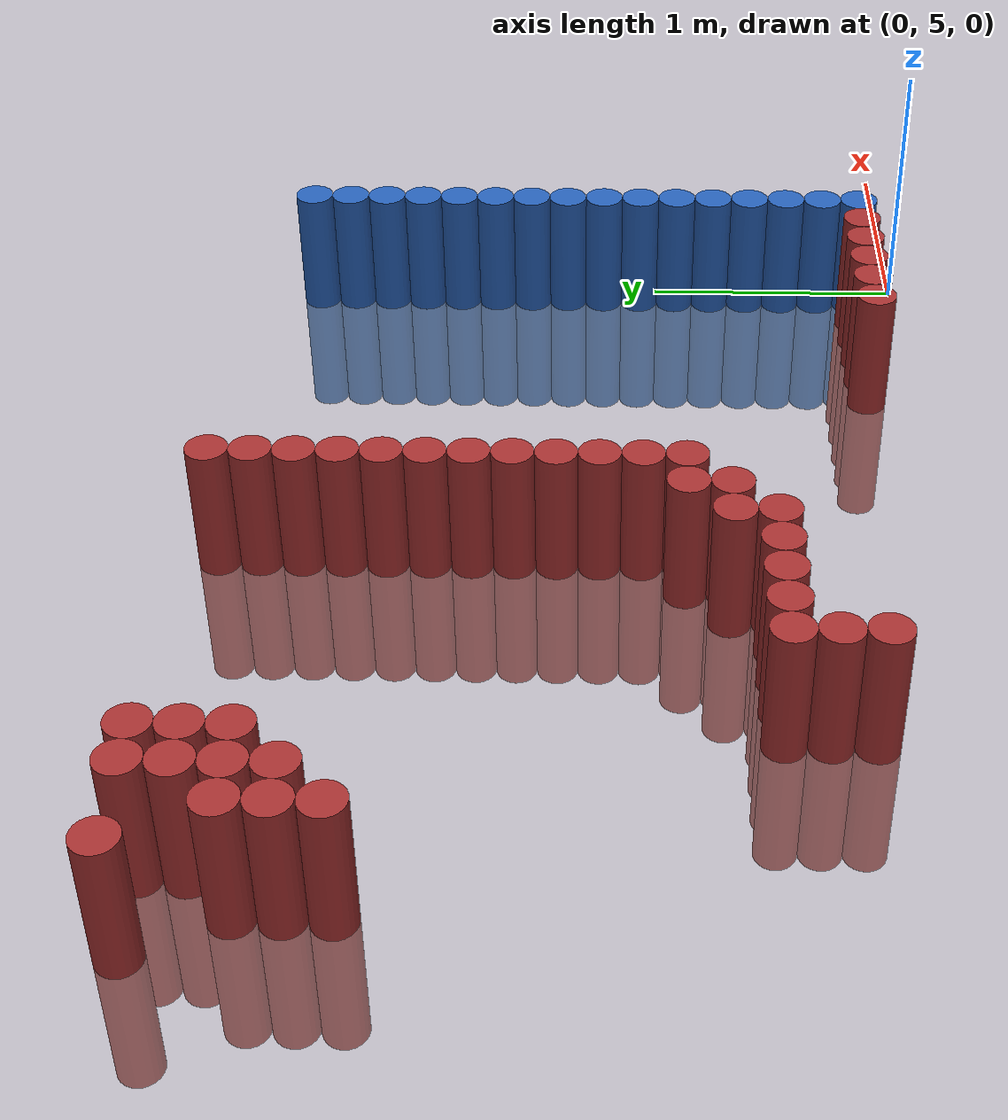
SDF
<sdf version="1.6">
 <world name="default">
  <model name="ground_plane">
   <static>1</static>
   <link name="link">
    <collision name="collision">
     <geometry><plane><normal>0 0 1</normal><size>100 100</size></plane></geometry>
     <surface><friction><ode><mu>100</mu><mu2>50</mu2></ode></friction></surface>
    </collision>
    <visual name="visual">
     <cast_shadows>0</cast_shadows>
     <geometry><plane><normal>0 0 1</normal><size>100 100</size></plane></geometry>
     <material>
      <script><uri>file://media/materials/scripts/gazebo.material</uri><name>Gazebo/Grey</name></script>
     </material>
    </visual>
   </link>
  </model>
  <model name="unit_cylinder_255">
   <static>1</static>
   <pose>-3.675000 7.575000 0.000000 0.000000 0.000000 0.000000</pose>
   <link name="link">
    <inertial>
     <mass>1</mass>
     <inertia><ixx>0.145833</ixx><ixy>0</ixy><ixz>0</ixz><iyy>0.145833</iyy><iyz>0</iyz><izz>0.125</izz></inertia>
    </inertial>
    <collision name="collision">
     <geometry><cylinder><radius>0.075000</radius><length>1</length></cylinder></geometry>
    </collision>
    <visual name="visual">
     <geometry><cylinder><radius>0.075000</radius><length>1</length></cylinder></geometry>
     <material>
      <ambient>0.648000 0.192000 0.192000 1</ambient>
      <diffuse>0.648000 0.192000 0.192000 1</diffuse>
     </material>
     <material>
      <script><name>Gazebo/Grey</name><uri>file://media/materials/scripts/gazebo.material</uri></script>
     </material>
    </visual>
   </link>
  </model>
  <model name="unit_cylinder_259">
   <static>1</static>
   <pose>-3.525000 6.975000 0.000000 0.000000 0.000000 0.000000</pose>
   <link name="link">
    <inertial>
     <mass>1</mass>
     <inertia><ixx>0.145833</ixx><ixy>0</ixy><ixz>0</ixz><iyy>0.145833</iyy><iyz>0</iyz><izz>0.125</izz></inertia>
    </inertial>
    <collision name="collision">
     <geometry><cylinder><radius>0.075000</radius><length>1</length></cylinder></geometry>
    </collision>
    <visual name="visual">
     <geometry><cylinder><radius>0.075000</radius><length>1</length></cylinder></geometry>
     <material>
      <ambient>0.648000 0.192000 0.192000 1</ambient>
      <diffuse>0.648000 0.192000 0.192000 1</diffuse>
     </material>
     <material>
      <script><name>Gazebo/Grey</name><uri>file://media/materials/scripts/gazebo.material</uri></script>
     </material>
    </visual>
   </link>
  </model>
  <model name="unit_cylinder_260">
   <static>1</static>
   <pose>-3.525000 7.125000 0.000000 0.000000 0.000000 0.000000</pose>
   <link name="link">
    <inertial>
     <mass>1</mass>
     <inertia><ixx>0.145833</ixx><ixy>0</ixy><ixz>0</ixz><iyy>0.145833</iyy><iyz>0</iyz><izz>0.125</izz></inertia>
    </inertial>
    <collision name="collision">
     <geometry><cylinder><radius>0.075000</radius><length>1</length></cylinder></geometry>
    </collision>
    <visual name="visual">
     <geometry><cylinder><radius>0.075000</radius><length>1</length></cylinder></geometry>
     <material>
      <ambient>0.648000 0.192000 0.192000 1</ambient>
      <diffuse>0.648000 0.192000 0.192000 1</diffuse>
     </material>
     <material>
      <script><name>Gazebo/Grey</name><uri>file://media/materials/scripts/gazebo.material</uri></script>
     </material>
    </visual>
   </link>
  </model>
  <model name="unit_cylinder_261">
   <static>1</static>
   <pose>-3.525000 7.275000 0.000000 0.000000 0.000000 0.000000</pose>
   <link name="link">
    <inertial>
     <mass>1</mass>
     <inertia><ixx>0.145833</ixx><ixy>0</ixy><ixz>0</ixz><iyy>0.145833</iyy><iyz>0</iyz><izz>0.125</izz></inertia>
    </inertial>
    <collision name="collision">
     <geometry><cylinder><radius>0.075000</radius><length>1</length></cylinder></geometry>
    </collision>
    <visual name="visual">
     <geometry><cylinder><radius>0.075000</radius><length>1</length></cylinder></geometry>
     <material>
      <ambient>0.648000 0.192000 0.192000 1</ambient>
      <diffuse>0.648000 0.192000 0.192000 1</diffuse>
     </material>
     <material>
      <script><name>Gazebo/Grey</name><uri>file://media/materials/scripts/gazebo.material</uri></script>
     </material>
    </visual>
   </link>
  </model>
  <model name="unit_cylinder_267">
   <static>1</static>
   <pose>-3.375000 7.125000 0.000000 0.000000 0.000000 0.000000</pose>
   <link name="link">
    <inertial>
     <mass>1</mass>
     <inertia><ixx>0.145833</ixx><ixy>0</ixy><ixz>0</ixz><iyy>0.145833</iyy><iyz>0</iyz><izz>0.125</izz></inertia>
    </inertial>
    <collision name="collision">
     <geometry><cylinder><radius>0.075000</radius><length>1</length></cylinder></geometry>
    </collision>
    <visual name="visual">
     <geometry><cylinder><radius>0.075000</radius><length>1</length></cylinder></geometry>
     <material>
      <ambient>0.648000 0.192000 0.192000 1</ambient>
      <diffuse>0.648000 0.192000 0.192000 1</diffuse>
     </material>
     <material>
      <script><name>Gazebo/Grey</name><uri>file://media/materials/scripts/gazebo.material</uri></script>
     </material>
    </visual>
   </link>
  </model>
  <model name="unit_cylinder_268">
   <static>1</static>
   <pose>-3.375000 7.275000 0.000000 0.000000 0.000000 0.000000</pose>
   <link name="link">
    <inertial>
     <mass>1</mass>
     <inertia><ixx>0.145833</ixx><ixy>0</ixy><ixz>0</ixz><iyy>0.145833</iyy><iyz>0</iyz><izz>0.125</izz></inertia>
    </inertial>
    <collision name="collision">
     <geometry><cylinder><radius>0.075000</radius><length>1</length></cylinder></geometry>
    </collision>
    <visual name="visual">
     <geometry><cylinder><radius>0.075000</radius><length>1</length></cylinder></geometry>
     <material>
      <ambient>0.648000 0.192000 0.192000 1</ambient>
      <diffuse>0.648000 0.192000 0.192000 1</diffuse>
     </material>
     <material>
      <script><name>Gazebo/Grey</name><uri>file://media/materials/scripts/gazebo.material</uri></script>
     </material>
    </visual>
   </link>
  </model>
  <model name="unit_cylinder_269">
   <static>1</static>
   <pose>-3.375000 7.425000 0.000000 0.000000 0.000000 0.000000</pose>
   <link name="link">
    <inertial>
     <mass>1</mass>
     <inertia><ixx>0.145833</ixx><ixy>0</ixy><ixz>0</ixz><iyy>0.145833</iyy><iyz>0</iyz><izz>0.125</izz></inertia>
    </inertial>
    <collision name="collision">
     <geometry><cylinder><radius>0.075000</radius><length>1</length></cylinder></geometry>
    </collision>
    <visual name="visual">
     <geometry><cylinder><radius>0.075000</radius><length>1</length></cylinder></geometry>
     <material>
      <ambient>0.648000 0.192000 0.192000 1</ambient>
      <diffuse>0.648000 0.192000 0.192000 1</diffuse>
     </material>
     <material>
      <script><name>Gazebo/Grey</name><uri>file://media/materials/scripts/gazebo.material</uri></script>
     </material>
    </visual>
   </link>
  </model>
  <model name="unit_cylinder_270">
   <static>1</static>
   <pose>-3.375000 7.575000 0.000000 0.000000 0.000000 0.000000</pose>
   <link name="link">
    <inertial>
     <mass>1</mass>
     <inertia><ixx>0.145833</ixx><ixy>0</ixy><ixz>0</ixz><iyy>0.145833</iyy><iyz>0</iyz><izz>0.125</izz></inertia>
    </inertial>
    <collision name="collision">
     <geometry><cylinder><radius>0.075000</radius><length>1</length></cylinder></geometry>
    </collision>
    <visual name="visual">
     <geometry><cylinder><radius>0.075000</radius><length>1</length></cylinder></geometry>
     <material>
      <ambient>0.648000 0.192000 0.192000 1</ambient>
      <diffuse>0.648000 0.192000 0.192000 1</diffuse>
     </material>
     <material>
      <script><name>Gazebo/Grey</name><uri>file://media/materials/scripts/gazebo.material</uri></script>
     </material>
    </visual>
   </link>
  </model>
  <model name="unit_cylinder_275">
   <static>1</static>
   <pose>-3.225000 7.275000 0.000000 0.000000 0.000000 0.000000</pose>
   <link name="link">
    <inertial>
     <mass>1</mass>
     <inertia><ixx>0.145833</ixx><ixy>0</ixy><ixz>0</ixz><iyy>0.145833</iyy><iyz>0</iyz><izz>0.125</izz></inertia>
    </inertial>
    <collision name="collision">
     <geometry><cylinder><radius>0.075000</radius><length>1</length></cylinder></geometry>
    </collision>
    <visual name="visual">
     <geometry><cylinder><radius>0.075000</radius><length>1</length></cylinder></geometry>
     <material>
      <ambient>0.648000 0.192000 0.192000 1</ambient>
      <diffuse>0.648000 0.192000 0.192000 1</diffuse>
     </material>
     <material>
      <script><name>Gazebo/Grey</name><uri>file://media/materials/scripts/gazebo.material</uri></script>
     </material>
    </visual>
   </link>
  </model>
  <model name="unit_cylinder_276">
   <static>1</static>
   <pose>-3.225000 7.425000 0.000000 0.000000 0.000000 0.000000</pose>
   <link name="link">
    <inertial>
     <mass>1</mass>
     <inertia><ixx>0.145833</ixx><ixy>0</ixy><ixz>0</ixz><iyy>0.145833</iyy><iyz>0</iyz><izz>0.125</izz></inertia>
    </inertial>
    <collision name="collision">
     <geometry><cylinder><radius>0.075000</radius><length>1</length></cylinder></geometry>
    </collision>
    <visual name="visual">
     <geometry><cylinder><radius>0.075000</radius><length>1</length></cylinder></geometry>
     <material>
      <ambient>0.648000 0.192000 0.192000 1</ambient>
      <diffuse>0.648000 0.192000 0.192000 1</diffuse>
     </material>
     <material>
      <script><name>Gazebo/Grey</name><uri>file://media/materials/scripts/gazebo.material</uri></script>
     </material>
    </visual>
   </link>
  </model>
  <model name="unit_cylinder_277">
   <static>1</static>
   <pose>-3.225000 7.575000 0.000000 0.000000 0.000000 0.000000</pose>
   <link name="link">
    <inertial>
     <mass>1</mass>
     <inertia><ixx>0.145833</ixx><ixy>0</ixy><ixz>0</ixz><iyy>0.145833</iyy><iyz>0</iyz><izz>0.125</izz></inertia>
    </inertial>
    <collision name="collision">
     <geometry><cylinder><radius>0.075000</radius><length>1</length></cylinder></geometry>
    </collision>
    <visual name="visual">
     <geometry><cylinder><radius>0.075000</radius><length>1</length></cylinder></geometry>
     <material>
      <ambient>0.648000 0.192000 0.192000 1</ambient>
      <diffuse>0.648000 0.192000 0.192000 1</diffuse>
     </material>
     <material>
      <script><name>Gazebo/Grey</name><uri>file://media/materials/scripts/gazebo.material</uri></script>
     </material>
    </visual>
   </link>
  </model>
  <model name="unit_cylinder_283">
   <static>1</static>
   <pose>-2.775000 5.325000 0.000000 0.000000 0.000000 0.000000</pose>
   <link name="link">
    <inertial>
     <mass>1</mass>
     <inertia><ixx>0.145833</ixx><ixy>0</ixy><ixz>0</ixz><iyy>0.145833</iyy><iyz>0</iyz><izz>0.125</izz></inertia>
    </inertial>
    <collision name="collision">
     <geometry><cylinder><radius>0.075000</radius><length>1</length></cylinder></geometry>
    </collision>
    <visual name="visual">
     <geometry><cylinder><radius>0.075000</radius><length>1</length></cylinder></geometry>
     <material>
      <ambient>0.648000 0.192000 0.192000 1</ambient>
      <diffuse>0.648000 0.192000 0.192000 1</diffuse>
     </material>
     <material>
      <script><name>Gazebo/Grey</name><uri>file://media/materials/scripts/gazebo.material</uri></script>
     </material>
    </visual>
   </link>
  </model>
  <model name="unit_cylinder_284">
   <static>1</static>
   <pose>-2.775000 5.475000 0.000000 0.000000 0.000000 0.000000</pose>
   <link name="link">
    <inertial>
     <mass>1</mass>
     <inertia><ixx>0.145833</ixx><ixy>0</ixy><ixz>0</ixz><iyy>0.145833</iyy><iyz>0</iyz><izz>0.125</izz></inertia>
    </inertial>
    <collision name="collision">
     <geometry><cylinder><radius>0.075000</radius><length>1</length></cylinder></geometry>
    </collision>
    <visual name="visual">
     <geometry><cylinder><radius>0.075000</radius><length>1</length></cylinder></geometry>
     <material>
      <ambient>0.648000 0.192000 0.192000 1</ambient>
      <diffuse>0.648000 0.192000 0.192000 1</diffuse>
     </material>
     <material>
      <script><name>Gazebo/Grey</name><uri>file://media/materials/scripts/gazebo.material</uri></script>
     </material>
    </visual>
   </link>
  </model>
  <model name="unit_cylinder_285">
   <static>1</static>
   <pose>-2.775000 5.625000 0.000000 0.000000 0.000000 0.000000</pose>
   <link name="link">
    <inertial>
     <mass>1</mass>
     <inertia><ixx>0.145833</ixx><ixy>0</ixy><ixz>0</ixz><iyy>0.145833</iyy><iyz>0</iyz><izz>0.125</izz></inertia>
    </inertial>
    <collision name="collision">
     <geometry><cylinder><radius>0.075000</radius><length>1</length></cylinder></geometry>
    </collision>
    <visual name="visual">
     <geometry><cylinder><radius>0.075000</radius><length>1</length></cylinder></geometry>
     <material>
      <ambient>0.648000 0.192000 0.192000 1</ambient>
      <diffuse>0.648000 0.192000 0.192000 1</diffuse>
     </material>
     <material>
      <script><name>Gazebo/Grey</name><uri>file://media/materials/scripts/gazebo.material</uri></script>
     </material>
    </visual>
   </link>
  </model>
  <model name="unit_cylinder_287">
   <static>1</static>
   <pose>-2.625000 5.625000 0.000000 0.000000 0.000000 0.000000</pose>
   <link name="link">
    <inertial>
     <mass>1</mass>
     <inertia><ixx>0.145833</ixx><ixy>0</ixy><ixz>0</ixz><iyy>0.145833</iyy><iyz>0</iyz><izz>0.125</izz></inertia>
    </inertial>
    <collision name="collision">
     <geometry><cylinder><radius>0.075000</radius><length>1</length></cylinder></geometry>
    </collision>
    <visual name="visual">
     <geometry><cylinder><radius>0.075000</radius><length>1</length></cylinder></geometry>
     <material>
      <ambient>0.648000 0.192000 0.192000 1</ambient>
      <diffuse>0.648000 0.192000 0.192000 1</diffuse>
     </material>
     <material>
      <script><name>Gazebo/Grey</name><uri>file://media/materials/scripts/gazebo.material</uri></script>
     </material>
    </visual>
   </link>
  </model>
  <model name="unit_cylinder_289">
   <static>1</static>
   <pose>-2.475000 5.625000 0.000000 0.000000 0.000000 0.000000</pose>
   <link name="link">
    <inertial>
     <mass>1</mass>
     <inertia><ixx>0.145833</ixx><ixy>0</ixy><ixz>0</ixz><iyy>0.145833</iyy><iyz>0</iyz><izz>0.125</izz></inertia>
    </inertial>
    <collision name="collision">
     <geometry><cylinder><radius>0.075000</radius><length>1</length></cylinder></geometry>
    </collision>
    <visual name="visual">
     <geometry><cylinder><radius>0.075000</radius><length>1</length></cylinder></geometry>
     <material>
      <ambient>0.648000 0.192000 0.192000 1</ambient>
      <diffuse>0.648000 0.192000 0.192000 1</diffuse>
     </material>
     <material>
      <script><name>Gazebo/Grey</name><uri>file://media/materials/scripts/gazebo.material</uri></script>
     </material>
    </visual>
   </link>
  </model>
  <model name="unit_cylinder_291">
   <static>1</static>
   <pose>-2.325000 5.625000 0.000000 0.000000 0.000000 0.000000</pose>
   <link name="link">
    <inertial>
     <mass>1</mass>
     <inertia><ixx>0.145833</ixx><ixy>0</ixy><ixz>0</ixz><iyy>0.145833</iyy><iyz>0</iyz><izz>0.125</izz></inertia>
    </inertial>
    <collision name="collision">
     <geometry><cylinder><radius>0.075000</radius><length>1</length></cylinder></geometry>
    </collision>
    <visual name="visual">
     <geometry><cylinder><radius>0.075000</radius><length>1</length></cylinder></geometry>
     <material>
      <ambient>0.648000 0.192000 0.192000 1</ambient>
      <diffuse>0.648000 0.192000 0.192000 1</diffuse>
     </material>
     <material>
      <script><name>Gazebo/Grey</name><uri>file://media/materials/scripts/gazebo.material</uri></script>
     </material>
    </visual>
   </link>
  </model>
  <model name="unit_cylinder_293">
   <static>1</static>
   <pose>-2.175000 5.625000 0.000000 0.000000 0.000000 0.000000</pose>
   <link name="link">
    <inertial>
     <mass>1</mass>
     <inertia><ixx>0.145833</ixx><ixy>0</ixy><ixz>0</ixz><iyy>0.145833</iyy><iyz>0</iyz><izz>0.125</izz></inertia>
    </inertial>
    <collision name="collision">
     <geometry><cylinder><radius>0.075000</radius><length>1</length></cylinder></geometry>
    </collision>
    <visual name="visual">
     <geometry><cylinder><radius>0.075000</radius><length>1</length></cylinder></geometry>
     <material>
      <ambient>0.648000 0.192000 0.192000 1</ambient>
      <diffuse>0.648000 0.192000 0.192000 1</diffuse>
     </material>
     <material>
      <script><name>Gazebo/Grey</name><uri>file://media/materials/scripts/gazebo.material</uri></script>
     </material>
    </visual>
   </link>
  </model>
  <model name="unit_cylinder_294">
   <static>1</static>
   <pose>-2.175000 5.775000 0.000000 0.000000 0.000000 0.000000</pose>
   <link name="link">
    <inertial>
     <mass>1</mass>
     <inertia><ixx>0.145833</ixx><ixy>0</ixy><ixz>0</ixz><iyy>0.145833</iyy><iyz>0</iyz><izz>0.125</izz></inertia>
    </inertial>
    <collision name="collision">
     <geometry><cylinder><radius>0.075000</radius><length>1</length></cylinder></geometry>
    </collision>
    <visual name="visual">
     <geometry><cylinder><radius>0.075000</radius><length>1</length></cylinder></geometry>
     <material>
      <ambient>0.648000 0.192000 0.192000 1</ambient>
      <diffuse>0.648000 0.192000 0.192000 1</diffuse>
     </material>
     <material>
      <script><name>Gazebo/Grey</name><uri>file://media/materials/scripts/gazebo.material</uri></script>
     </material>
    </visual>
   </link>
  </model>
  <model name="unit_cylinder_296">
   <static>1</static>
   <pose>-2.025000 5.775000 0.000000 0.000000 0.000000 0.000000</pose>
   <link name="link">
    <inertial>
     <mass>1</mass>
     <inertia><ixx>0.145833</ixx><ixy>0</ixy><ixz>0</ixz><iyy>0.145833</iyy><iyz>0</iyz><izz>0.125</izz></inertia>
    </inertial>
    <collision name="collision">
     <geometry><cylinder><radius>0.075000</radius><length>1</length></cylinder></geometry>
    </collision>
    <visual name="visual">
     <geometry><cylinder><radius>0.075000</radius><length>1</length></cylinder></geometry>
     <material>
      <ambient>0.648000 0.192000 0.192000 1</ambient>
      <diffuse>0.648000 0.192000 0.192000 1</diffuse>
     </material>
     <material>
      <script><name>Gazebo/Grey</name><uri>file://media/materials/scripts/gazebo.material</uri></script>
     </material>
    </visual>
   </link>
  </model>
  <model name="unit_cylinder_297">
   <static>1</static>
   <pose>-2.025000 5.925000 0.000000 0.000000 0.000000 0.000000</pose>
   <link name="link">
    <inertial>
     <mass>1</mass>
     <inertia><ixx>0.145833</ixx><ixy>0</ixy><ixz>0</ixz><iyy>0.145833</iyy><iyz>0</iyz><izz>0.125</izz></inertia>
    </inertial>
    <collision name="collision">
     <geometry><cylinder><radius>0.075000</radius><length>1</length></cylinder></geometry>
    </collision>
    <visual name="visual">
     <geometry><cylinder><radius>0.075000</radius><length>1</length></cylinder></geometry>
     <material>
      <ambient>0.648000 0.192000 0.192000 1</ambient>
      <diffuse>0.648000 0.192000 0.192000 1</diffuse>
     </material>
     <material>
      <script><name>Gazebo/Grey</name><uri>file://media/materials/scripts/gazebo.material</uri></script>
     </material>
    </visual>
   </link>
  </model>
  <model name="unit_cylinder_302">
   <static>1</static>
   <pose>-1.875000 5.925000 0.000000 0.000000 0.000000 0.000000</pose>
   <link name="link">
    <inertial>
     <mass>1</mass>
     <inertia><ixx>0.145833</ixx><ixy>0</ixy><ixz>0</ixz><iyy>0.145833</iyy><iyz>0</iyz><izz>0.125</izz></inertia>
    </inertial>
    <collision name="collision">
     <geometry><cylinder><radius>0.075000</radius><length>1</length></cylinder></geometry>
    </collision>
    <visual name="visual">
     <geometry><cylinder><radius>0.075000</radius><length>1</length></cylinder></geometry>
     <material>
      <ambient>0.648000 0.192000 0.192000 1</ambient>
      <diffuse>0.648000 0.192000 0.192000 1</diffuse>
     </material>
     <material>
      <script><name>Gazebo/Grey</name><uri>file://media/materials/scripts/gazebo.material</uri></script>
     </material>
    </visual>
   </link>
  </model>
  <model name="unit_cylinder_303">
   <static>1</static>
   <pose>-1.875000 6.075000 0.000000 0.000000 0.000000 0.000000</pose>
   <link name="link">
    <inertial>
     <mass>1</mass>
     <inertia><ixx>0.145833</ixx><ixy>0</ixy><ixz>0</ixz><iyy>0.145833</iyy><iyz>0</iyz><izz>0.125</izz></inertia>
    </inertial>
    <collision name="collision">
     <geometry><cylinder><radius>0.075000</radius><length>1</length></cylinder></geometry>
    </collision>
    <visual name="visual">
     <geometry><cylinder><radius>0.075000</radius><length>1</length></cylinder></geometry>
     <material>
      <ambient>0.648000 0.192000 0.192000 1</ambient>
      <diffuse>0.648000 0.192000 0.192000 1</diffuse>
     </material>
     <material>
      <script><name>Gazebo/Grey</name><uri>file://media/materials/scripts/gazebo.material</uri></script>
     </material>
    </visual>
   </link>
  </model>
  <model name="unit_cylinder_304">
   <static>1</static>
   <pose>-1.875000 6.225000 0.000000 0.000000 0.000000 0.000000</pose>
   <link name="link">
    <inertial>
     <mass>1</mass>
     <inertia><ixx>0.145833</ixx><ixy>0</ixy><ixz>0</ixz><iyy>0.145833</iyy><iyz>0</iyz><izz>0.125</izz></inertia>
    </inertial>
    <collision name="collision">
     <geometry><cylinder><radius>0.075000</radius><length>1</length></cylinder></geometry>
    </collision>
    <visual name="visual">
     <geometry><cylinder><radius>0.075000</radius><length>1</length></cylinder></geometry>
     <material>
      <ambient>0.648000 0.192000 0.192000 1</ambient>
      <diffuse>0.648000 0.192000 0.192000 1</diffuse>
     </material>
     <material>
      <script><name>Gazebo/Grey</name><uri>file://media/materials/scripts/gazebo.material</uri></script>
     </material>
    </visual>
   </link>
  </model>
  <model name="unit_cylinder_305">
   <static>1</static>
   <pose>-1.875000 6.375000 0.000000 0.000000 0.000000 0.000000</pose>
   <link name="link">
    <inertial>
     <mass>1</mass>
     <inertia><ixx>0.145833</ixx><ixy>0</ixy><ixz>0</ixz><iyy>0.145833</iyy><iyz>0</iyz><izz>0.125</izz></inertia>
    </inertial>
    <collision name="collision">
     <geometry><cylinder><radius>0.075000</radius><length>1</length></cylinder></geometry>
    </collision>
    <visual name="visual">
     <geometry><cylinder><radius>0.075000</radius><length>1</length></cylinder></geometry>
     <material>
      <ambient>0.648000 0.192000 0.192000 1</ambient>
      <diffuse>0.648000 0.192000 0.192000 1</diffuse>
     </material>
     <material>
      <script><name>Gazebo/Grey</name><uri>file://media/materials/scripts/gazebo.material</uri></script>
     </material>
    </visual>
   </link>
  </model>
  <model name="unit_cylinder_306">
   <static>1</static>
   <pose>-1.875000 6.525000 0.000000 0.000000 0.000000 0.000000</pose>
   <link name="link">
    <inertial>
     <mass>1</mass>
     <inertia><ixx>0.145833</ixx><ixy>0</ixy><ixz>0</ixz><iyy>0.145833</iyy><iyz>0</iyz><izz>0.125</izz></inertia>
    </inertial>
    <collision name="collision">
     <geometry><cylinder><radius>0.075000</radius><length>1</length></cylinder></geometry>
    </collision>
    <visual name="visual">
     <geometry><cylinder><radius>0.075000</radius><length>1</length></cylinder></geometry>
     <material>
      <ambient>0.648000 0.192000 0.192000 1</ambient>
      <diffuse>0.648000 0.192000 0.192000 1</diffuse>
     </material>
     <material>
      <script><name>Gazebo/Grey</name><uri>file://media/materials/scripts/gazebo.material</uri></script>
     </material>
    </visual>
   </link>
  </model>
  <model name="unit_cylinder_307">
   <static>1</static>
   <pose>-1.875000 6.675000 0.000000 0.000000 0.000000 0.000000</pose>
   <link name="link">
    <inertial>
     <mass>1</mass>
     <inertia><ixx>0.145833</ixx><ixy>0</ixy><ixz>0</ixz><iyy>0.145833</iyy><iyz>0</iyz><izz>0.125</izz></inertia>
    </inertial>
    <collision name="collision">
     <geometry><cylinder><radius>0.075000</radius><length>1</length></cylinder></geometry>
    </collision>
    <visual name="visual">
     <geometry><cylinder><radius>0.075000</radius><length>1</length></cylinder></geometry>
     <material>
      <ambient>0.648000 0.192000 0.192000 1</ambient>
      <diffuse>0.648000 0.192000 0.192000 1</diffuse>
     </material>
     <material>
      <script><name>Gazebo/Grey</name><uri>file://media/materials/scripts/gazebo.material</uri></script>
     </material>
    </visual>
   </link>
  </model>
  <model name="unit_cylinder_308">
   <static>1</static>
   <pose>-1.875000 6.825000 0.000000 0.000000 0.000000 0.000000</pose>
   <link name="link">
    <inertial>
     <mass>1</mass>
     <inertia><ixx>0.145833</ixx><ixy>0</ixy><ixz>0</ixz><iyy>0.145833</iyy><iyz>0</iyz><izz>0.125</izz></inertia>
    </inertial>
    <collision name="collision">
     <geometry><cylinder><radius>0.075000</radius><length>1</length></cylinder></geometry>
    </collision>
    <visual name="visual">
     <geometry><cylinder><radius>0.075000</radius><length>1</length></cylinder></geometry>
     <material>
      <ambient>0.648000 0.192000 0.192000 1</ambient>
      <diffuse>0.648000 0.192000 0.192000 1</diffuse>
     </material>
     <material>
      <script><name>Gazebo/Grey</name><uri>file://media/materials/scripts/gazebo.material</uri></script>
     </material>
    </visual>
   </link>
  </model>
  <model name="unit_cylinder_309">
   <static>1</static>
   <pose>-1.875000 6.975000 0.000000 0.000000 0.000000 0.000000</pose>
   <link name="link">
    <inertial>
     <mass>1</mass>
     <inertia><ixx>0.145833</ixx><ixy>0</ixy><ixz>0</ixz><iyy>0.145833</iyy><iyz>0</iyz><izz>0.125</izz></inertia>
    </inertial>
    <collision name="collision">
     <geometry><cylinder><radius>0.075000</radius><length>1</length></cylinder></geometry>
    </collision>
    <visual name="visual">
     <geometry><cylinder><radius>0.075000</radius><length>1</length></cylinder></geometry>
     <material>
      <ambient>0.648000 0.192000 0.192000 1</ambient>
      <diffuse>0.648000 0.192000 0.192000 1</diffuse>
     </material>
     <material>
      <script><name>Gazebo/Grey</name><uri>file://media/materials/scripts/gazebo.material</uri></script>
     </material>
    </visual>
   </link>
  </model>
  <model name="unit_cylinder_310">
   <static>1</static>
   <pose>-1.875000 7.125000 0.000000 0.000000 0.000000 0.000000</pose>
   <link name="link">
    <inertial>
     <mass>1</mass>
     <inertia><ixx>0.145833</ixx><ixy>0</ixy><ixz>0</ixz><iyy>0.145833</iyy><iyz>0</iyz><izz>0.125</izz></inertia>
    </inertial>
    <collision name="collision">
     <geometry><cylinder><radius>0.075000</radius><length>1</length></cylinder></geometry>
    </collision>
    <visual name="visual">
     <geometry><cylinder><radius>0.075000</radius><length>1</length></cylinder></geometry>
     <material>
      <ambient>0.648000 0.192000 0.192000 1</ambient>
      <diffuse>0.648000 0.192000 0.192000 1</diffuse>
     </material>
     <material>
      <script><name>Gazebo/Grey</name><uri>file://media/materials/scripts/gazebo.material</uri></script>
     </material>
    </visual>
   </link>
  </model>
  <model name="unit_cylinder_311">
   <static>1</static>
   <pose>-1.875000 7.275000 0.000000 0.000000 0.000000 0.000000</pose>
   <link name="link">
    <inertial>
     <mass>1</mass>
     <inertia><ixx>0.145833</ixx><ixy>0</ixy><ixz>0</ixz><iyy>0.145833</iyy><iyz>0</iyz><izz>0.125</izz></inertia>
    </inertial>
    <collision name="collision">
     <geometry><cylinder><radius>0.075000</radius><length>1</length></cylinder></geometry>
    </collision>
    <visual name="visual">
     <geometry><cylinder><radius>0.075000</radius><length>1</length></cylinder></geometry>
     <material>
      <ambient>0.648000 0.192000 0.192000 1</ambient>
      <diffuse>0.648000 0.192000 0.192000 1</diffuse>
     </material>
     <material>
      <script><name>Gazebo/Grey</name><uri>file://media/materials/scripts/gazebo.material</uri></script>
     </material>
    </visual>
   </link>
  </model>
  <model name="unit_cylinder_312">
   <static>1</static>
   <pose>-1.875000 7.425000 0.000000 0.000000 0.000000 0.000000</pose>
   <link name="link">
    <inertial>
     <mass>1</mass>
     <inertia><ixx>0.145833</ixx><ixy>0</ixy><ixz>0</ixz><iyy>0.145833</iyy><iyz>0</iyz><izz>0.125</izz></inertia>
    </inertial>
    <collision name="collision">
     <geometry><cylinder><radius>0.075000</radius><length>1</length></cylinder></geometry>
    </collision>
    <visual name="visual">
     <geometry><cylinder><radius>0.075000</radius><length>1</length></cylinder></geometry>
     <material>
      <ambient>0.648000 0.192000 0.192000 1</ambient>
      <diffuse>0.648000 0.192000 0.192000 1</diffuse>
     </material>
     <material>
      <script><name>Gazebo/Grey</name><uri>file://media/materials/scripts/gazebo.material</uri></script>
     </material>
    </visual>
   </link>
  </model>
  <model name="unit_cylinder_313">
   <static>1</static>
   <pose>-1.875000 7.575000 0.000000 0.000000 0.000000 0.000000</pose>
   <link name="link">
    <inertial>
     <mass>1</mass>
     <inertia><ixx>0.145833</ixx><ixy>0</ixy><ixz>0</ixz><iyy>0.145833</iyy><iyz>0</iyz><izz>0.125</izz></inertia>
    </inertial>
    <collision name="collision">
     <geometry><cylinder><radius>0.075000</radius><length>1</length></cylinder></geometry>
    </collision>
    <visual name="visual">
     <geometry><cylinder><radius>0.075000</radius><length>1</length></cylinder></geometry>
     <material>
      <ambient>0.648000 0.192000 0.192000 1</ambient>
      <diffuse>0.648000 0.192000 0.192000 1</diffuse>
     </material>
     <material>
      <script><name>Gazebo/Grey</name><uri>file://media/materials/scripts/gazebo.material</uri></script>
     </material>
    </visual>
   </link>
  </model>
  <model name="unit_cylinder_338">
   <static>1</static>
   <pose>-0.825000 5.175000 0.000000 0.000000 0.000000 0.000000</pose>
   <link name="link">
    <inertial>
     <mass>1</mass>
     <inertia><ixx>0.145833</ixx><ixy>0</ixy><ixz>0</ixz><iyy>0.145833</iyy><iyz>0</iyz><izz>0.125</izz></inertia>
    </inertial>
    <collision name="collision">
     <geometry><cylinder><radius>0.075000</radius><length>1</length></cylinder></geometry>
    </collision>
    <visual name="visual">
     <geometry><cylinder><radius>0.075000</radius><length>1</length></cylinder></geometry>
     <material>
      <ambient>0.648000 0.192000 0.192000 1</ambient>
      <diffuse>0.648000 0.192000 0.192000 1</diffuse>
     </material>
     <material>
      <script><name>Gazebo/Grey</name><uri>file://media/materials/scripts/gazebo.material</uri></script>
     </material>
    </visual>
   </link>
  </model>
  <model name="unit_cylinder_340">
   <static>1</static>
   <pose>-0.675000 5.175000 0.000000 0.000000 0.000000 0.000000</pose>
   <link name="link">
    <inertial>
     <mass>1</mass>
     <inertia><ixx>0.145833</ixx><ixy>0</ixy><ixz>0</ixz><iyy>0.145833</iyy><iyz>0</iyz><izz>0.125</izz></inertia>
    </inertial>
    <collision name="collision">
     <geometry><cylinder><radius>0.075000</radius><length>1</length></cylinder></geometry>
    </collision>
    <visual name="visual">
     <geometry><cylinder><radius>0.075000</radius><length>1</length></cylinder></geometry>
     <material>
      <ambient>0.648000 0.192000 0.192000 1</ambient>
      <diffuse>0.648000 0.192000 0.192000 1</diffuse>
     </material>
     <material>
      <script><name>Gazebo/Grey</name><uri>file://media/materials/scripts/gazebo.material</uri></script>
     </material>
    </visual>
   </link>
  </model>
  <model name="unit_cylinder_342">
   <static>1</static>
   <pose>-0.525000 5.175000 0.000000 0.000000 0.000000 0.000000</pose>
   <link name="link">
    <inertial>
     <mass>1</mass>
     <inertia><ixx>0.145833</ixx><ixy>0</ixy><ixz>0</ixz><iyy>0.145833</iyy><iyz>0</iyz><izz>0.125</izz></inertia>
    </inertial>
    <collision name="collision">
     <geometry><cylinder><radius>0.075000</radius><length>1</length></cylinder></geometry>
    </collision>
    <visual name="visual">
     <geometry><cylinder><radius>0.075000</radius><length>1</length></cylinder></geometry>
     <material>
      <ambient>0.648000 0.192000 0.192000 1</ambient>
      <diffuse>0.648000 0.192000 0.192000 1</diffuse>
     </material>
     <material>
      <script><name>Gazebo/Grey</name><uri>file://media/materials/scripts/gazebo.material</uri></script>
     </material>
    </visual>
   </link>
  </model>
  <model name="unit_cylinder_344">
   <static>1</static>
   <pose>-0.375000 5.175000 0.000000 0.000000 0.000000 0.000000</pose>
   <link name="link">
    <inertial>
     <mass>1</mass>
     <inertia><ixx>0.145833</ixx><ixy>0</ixy><ixz>0</ixz><iyy>0.145833</iyy><iyz>0</iyz><izz>0.125</izz></inertia>
    </inertial>
    <collision name="collision">
     <geometry><cylinder><radius>0.075000</radius><length>1</length></cylinder></geometry>
    </collision>
    <visual name="visual">
     <geometry><cylinder><radius>0.075000</radius><length>1</length></cylinder></geometry>
     <material>
      <ambient>0.648000 0.192000 0.192000 1</ambient>
      <diffuse>0.648000 0.192000 0.192000 1</diffuse>
     </material>
     <material>
      <script><name>Gazebo/Grey</name><uri>file://media/materials/scripts/gazebo.material</uri></script>
     </material>
    </visual>
   </link>
  </model>
  <model name="unit_cylinder_346">
   <static>1</static>
   <pose>-0.225000 5.175000 0.000000 0.000000 0.000000 0.000000</pose>
   <link name="link">
    <inertial>
     <mass>1</mass>
     <inertia><ixx>0.145833</ixx><ixy>0</ixy><ixz>0</ixz><iyy>0.145833</iyy><iyz>0</iyz><izz>0.125</izz></inertia>
    </inertial>
    <collision name="collision">
     <geometry><cylinder><radius>0.075000</radius><length>1</length></cylinder></geometry>
    </collision>
    <visual name="visual">
     <geometry><cylinder><radius>0.075000</radius><length>1</length></cylinder></geometry>
     <material>
      <ambient>0.648000 0.192000 0.192000 1</ambient>
      <diffuse>0.648000 0.192000 0.192000 1</diffuse>
     </material>
     <material>
      <script><name>Gazebo/Grey</name><uri>file://media/materials/scripts/gazebo.material</uri></script>
     </material>
    </visual>
   </link>
  </model>
  <model name="unit_cylinder_348">
   <static>1</static>
   <pose>-0.075000 5.175000 0.000000 0.000000 0.000000 0.000000</pose>
   <link name="link">
    <inertial>
     <mass>1</mass>
     <inertia><ixx>0.145833</ixx><ixy>0</ixy><ixz>0</ixz><iyy>0.145833</iyy><iyz>0</iyz><izz>0.125</izz></inertia>
    </inertial>
    <collision name="collision">
     <geometry><cylinder><radius>0.075000</radius><length>1</length></cylinder></geometry>
    </collision>
    <visual name="visual">
     <geometry><cylinder><radius>0.075000</radius><length>1</length></cylinder></geometry>
     <material>
      <ambient>0.152000 0.379000 0.720000 1</ambient>
      <diffuse>0.152000 0.379000 0.720000 1</diffuse>
     </material>
     <material>
      <script><name>Gazebo/Grey</name><uri>file://media/materials/scripts/gazebo.material</uri></script>
     </material>
    </visual>
   </link>
  </model>
  <model name="unit_cylinder_349">
   <static>1</static>
   <pose>-0.075000 5.325000 0.000000 0.000000 0.000000 0.000000</pose>
   <link name="link">
    <inertial>
     <mass>1</mass>
     <inertia><ixx>0.145833</ixx><ixy>0</ixy><ixz>0</ixz><iyy>0.145833</iyy><iyz>0</iyz><izz>0.125</izz></inertia>
    </inertial>
    <collision name="collision">
     <geometry><cylinder><radius>0.075000</radius><length>1</length></cylinder></geometry>
    </collision>
    <visual name="visual">
     <geometry><cylinder><radius>0.075000</radius><length>1</length></cylinder></geometry>
     <material>
      <ambient>0.152000 0.379000 0.720000 1</ambient>
      <diffuse>0.152000 0.379000 0.720000 1</diffuse>
     </material>
     <material>
      <script><name>Gazebo/Grey</name><uri>file://media/materials/scripts/gazebo.material</uri></script>
     </material>
    </visual>
   </link>
  </model>
  <model name="unit_cylinder_350">
   <static>1</static>
   <pose>-0.075000 5.475000 0.000000 0.000000 0.000000 0.000000</pose>
   <link name="link">
    <inertial>
     <mass>1</mass>
     <inertia><ixx>0.145833</ixx><ixy>0</ixy><ixz>0</ixz><iyy>0.145833</iyy><iyz>0</iyz><izz>0.125</izz></inertia>
    </inertial>
    <collision name="collision">
     <geometry><cylinder><radius>0.075000</radius><length>1</length></cylinder></geometry>
    </collision>
    <visual name="visual">
     <geometry><cylinder><radius>0.075000</radius><length>1</length></cylinder></geometry>
     <material>
      <ambient>0.152000 0.379000 0.720000 1</ambient>
      <diffuse>0.152000 0.379000 0.720000 1</diffuse>
     </material>
     <material>
      <script><name>Gazebo/Grey</name><uri>file://media/materials/scripts/gazebo.material</uri></script>
     </material>
    </visual>
   </link>
  </model>
  <model name="unit_cylinder_351">
   <static>1</static>
   <pose>-0.075000 5.625000 0.000000 0.000000 0.000000 0.000000</pose>
   <link name="link">
    <inertial>
     <mass>1</mass>
     <inertia><ixx>0.145833</ixx><ixy>0</ixy><ixz>0</ixz><iyy>0.145833</iyy><iyz>0</iyz><izz>0.125</izz></inertia>
    </inertial>
    <collision name="collision">
     <geometry><cylinder><radius>0.075000</radius><length>1</length></cylinder></geometry>
    </collision>
    <visual name="visual">
     <geometry><cylinder><radius>0.075000</radius><length>1</length></cylinder></geometry>
     <material>
      <ambient>0.152000 0.379000 0.720000 1</ambient>
      <diffuse>0.152000 0.379000 0.720000 1</diffuse>
     </material>
     <material>
      <script><name>Gazebo/Grey</name><uri>file://media/materials/scripts/gazebo.material</uri></script>
     </material>
    </visual>
   </link>
  </model>
  <model name="unit_cylinder_352">
   <static>1</static>
   <pose>-0.075000 5.775000 0.000000 0.000000 0.000000 0.000000</pose>
   <link name="link">
    <inertial>
     <mass>1</mass>
     <inertia><ixx>0.145833</ixx><ixy>0</ixy><ixz>0</ixz><iyy>0.145833</iyy><iyz>0</iyz><izz>0.125</izz></inertia>
    </inertial>
    <collision name="collision">
     <geometry><cylinder><radius>0.075000</radius><length>1</length></cylinder></geometry>
    </collision>
    <visual name="visual">
     <geometry><cylinder><radius>0.075000</radius><length>1</length></cylinder></geometry>
     <material>
      <ambient>0.152000 0.379000 0.720000 1</ambient>
      <diffuse>0.152000 0.379000 0.720000 1</diffuse>
     </material>
     <material>
      <script><name>Gazebo/Grey</name><uri>file://media/materials/scripts/gazebo.material</uri></script>
     </material>
    </visual>
   </link>
  </model>
  <model name="unit_cylinder_353">
   <static>1</static>
   <pose>-0.075000 5.925000 0.000000 0.000000 0.000000 0.000000</pose>
   <link name="link">
    <inertial>
     <mass>1</mass>
     <inertia><ixx>0.145833</ixx><ixy>0</ixy><ixz>0</ixz><iyy>0.145833</iyy><iyz>0</iyz><izz>0.125</izz></inertia>
    </inertial>
    <collision name="collision">
     <geometry><cylinder><radius>0.075000</radius><length>1</length></cylinder></geometry>
    </collision>
    <visual name="visual">
     <geometry><cylinder><radius>0.075000</radius><length>1</length></cylinder></geometry>
     <material>
      <ambient>0.152000 0.379000 0.720000 1</ambient>
      <diffuse>0.152000 0.379000 0.720000 1</diffuse>
     </material>
     <material>
      <script><name>Gazebo/Grey</name><uri>file://media/materials/scripts/gazebo.material</uri></script>
     </material>
    </visual>
   </link>
  </model>
  <model name="unit_cylinder_354">
   <static>1</static>
   <pose>-0.075000 6.075000 0.000000 0.000000 0.000000 0.000000</pose>
   <link name="link">
    <inertial>
     <mass>1</mass>
     <inertia><ixx>0.145833</ixx><ixy>0</ixy><ixz>0</ixz><iyy>0.145833</iyy><iyz>0</iyz><izz>0.125</izz></inertia>
    </inertial>
    <collision name="collision">
     <geometry><cylinder><radius>0.075000</radius><length>1</length></cylinder></geometry>
    </collision>
    <visual name="visual">
     <geometry><cylinder><radius>0.075000</radius><length>1</length></cylinder></geometry>
     <material>
      <ambient>0.152000 0.379000 0.720000 1</ambient>
      <diffuse>0.152000 0.379000 0.720000 1</diffuse>
     </material>
     <material>
      <script><name>Gazebo/Grey</name><uri>file://media/materials/scripts/gazebo.material</uri></script>
     </material>
    </visual>
   </link>
  </model>
  <model name="unit_cylinder_355">
   <static>1</static>
   <pose>-0.075000 6.225000 0.000000 0.000000 0.000000 0.000000</pose>
   <link name="link">
    <inertial>
     <mass>1</mass>
     <inertia><ixx>0.145833</ixx><ixy>0</ixy><ixz>0</ixz><iyy>0.145833</iyy><iyz>0</iyz><izz>0.125</izz></inertia>
    </inertial>
    <collision name="collision">
     <geometry><cylinder><radius>0.075000</radius><length>1</length></cylinder></geometry>
    </collision>
    <visual name="visual">
     <geometry><cylinder><radius>0.075000</radius><length>1</length></cylinder></geometry>
     <material>
      <ambient>0.152000 0.379000 0.720000 1</ambient>
      <diffuse>0.152000 0.379000 0.720000 1</diffuse>
     </material>
     <material>
      <script><name>Gazebo/Grey</name><uri>file://media/materials/scripts/gazebo.material</uri></script>
     </material>
    </visual>
   </link>
  </model>
  <model name="unit_cylinder_356">
   <static>1</static>
   <pose>-0.075000 6.375000 0.000000 0.000000 0.000000 0.000000</pose>
   <link name="link">
    <inertial>
     <mass>1</mass>
     <inertia><ixx>0.145833</ixx><ixy>0</ixy><ixz>0</ixz><iyy>0.145833</iyy><iyz>0</iyz><izz>0.125</izz></inertia>
    </inertial>
    <collision name="collision">
     <geometry><cylinder><radius>0.075000</radius><length>1</length></cylinder></geometry>
    </collision>
    <visual name="visual">
     <geometry><cylinder><radius>0.075000</radius><length>1</length></cylinder></geometry>
     <material>
      <ambient>0.152000 0.379000 0.720000 1</ambient>
      <diffuse>0.152000 0.379000 0.720000 1</diffuse>
     </material>
     <material>
      <script><name>Gazebo/Grey</name><uri>file://media/materials/scripts/gazebo.material</uri></script>
     </material>
    </visual>
   </link>
  </model>
  <model name="unit_cylinder_357">
   <static>1</static>
   <pose>-0.075000 6.525000 0.000000 0.000000 0.000000 0.000000</pose>
   <link name="link">
    <inertial>
     <mass>1</mass>
     <inertia><ixx>0.145833</ixx><ixy>0</ixy><ixz>0</ixz><iyy>0.145833</iyy><iyz>0</iyz><izz>0.125</izz></inertia>
    </inertial>
    <collision name="collision">
     <geometry><cylinder><radius>0.075000</radius><length>1</length></cylinder></geometry>
    </collision>
    <visual name="visual">
     <geometry><cylinder><radius>0.075000</radius><length>1</length></cylinder></geometry>
     <material>
      <ambient>0.152000 0.379000 0.720000 1</ambient>
      <diffuse>0.152000 0.379000 0.720000 1</diffuse>
     </material>
     <material>
      <script><name>Gazebo/Grey</name><uri>file://media/materials/scripts/gazebo.material</uri></script>
     </material>
    </visual>
   </link>
  </model>
  <model name="unit_cylinder_358">
   <static>1</static>
   <pose>-0.075000 6.675000 0.000000 0.000000 0.000000 0.000000</pose>
   <link name="link">
    <inertial>
     <mass>1</mass>
     <inertia><ixx>0.145833</ixx><ixy>0</ixy><ixz>0</ixz><iyy>0.145833</iyy><iyz>0</iyz><izz>0.125</izz></inertia>
    </inertial>
    <collision name="collision">
     <geometry><cylinder><radius>0.075000</radius><length>1</length></cylinder></geometry>
    </collision>
    <visual name="visual">
     <geometry><cylinder><radius>0.075000</radius><length>1</length></cylinder></geometry>
     <material>
      <ambient>0.152000 0.379000 0.720000 1</ambient>
      <diffuse>0.152000 0.379000 0.720000 1</diffuse>
     </material>
     <material>
      <script><name>Gazebo/Grey</name><uri>file://media/materials/scripts/gazebo.material</uri></script>
     </material>
    </visual>
   </link>
  </model>
  <model name="unit_cylinder_359">
   <static>1</static>
   <pose>-0.075000 6.825000 0.000000 0.000000 0.000000 0.000000</pose>
   <link name="link">
    <inertial>
     <mass>1</mass>
     <inertia><ixx>0.145833</ixx><ixy>0</ixy><ixz>0</ixz><iyy>0.145833</iyy><iyz>0</iyz><izz>0.125</izz></inertia>
    </inertial>
    <collision name="collision">
     <geometry><cylinder><radius>0.075000</radius><length>1</length></cylinder></geometry>
    </collision>
    <visual name="visual">
     <geometry><cylinder><radius>0.075000</radius><length>1</length></cylinder></geometry>
     <material>
      <ambient>0.152000 0.379000 0.720000 1</ambient>
      <diffuse>0.152000 0.379000 0.720000 1</diffuse>
     </material>
     <material>
      <script><name>Gazebo/Grey</name><uri>file://media/materials/scripts/gazebo.material</uri></script>
     </material>
    </visual>
   </link>
  </model>
  <model name="unit_cylinder_360">
   <static>1</static>
   <pose>-0.075000 6.975000 0.000000 0.000000 0.000000 0.000000</pose>
   <link name="link">
    <inertial>
     <mass>1</mass>
     <inertia><ixx>0.145833</ixx><ixy>0</ixy><ixz>0</ixz><iyy>0.145833</iyy><iyz>0</iyz><izz>0.125</izz></inertia>
    </inertial>
    <collision name="collision">
     <geometry><cylinder><radius>0.075000</radius><length>1</length></cylinder></geometry>
    </collision>
    <visual name="visual">
     <geometry><cylinder><radius>0.075000</radius><length>1</length></cylinder></geometry>
     <material>
      <ambient>0.152000 0.379000 0.720000 1</ambient>
      <diffuse>0.152000 0.379000 0.720000 1</diffuse>
     </material>
     <material>
      <script><name>Gazebo/Grey</name><uri>file://media/materials/scripts/gazebo.material</uri></script>
     </material>
    </visual>
   </link>
  </model>
  <model name="unit_cylinder_361">
   <static>1</static>
   <pose>-0.075000 7.125000 0.000000 0.000000 0.000000 0.000000</pose>
   <link name="link">
    <inertial>
     <mass>1</mass>
     <inertia><ixx>0.145833</ixx><ixy>0</ixy><ixz>0</ixz><iyy>0.145833</iyy><iyz>0</iyz><izz>0.125</izz></inertia>
    </inertial>
    <collision name="collision">
     <geometry><cylinder><radius>0.075000</radius><length>1</length></cylinder></geometry>
    </collision>
    <visual name="visual">
     <geometry><cylinder><radius>0.075000</radius><length>1</length></cylinder></geometry>
     <material>
      <ambient>0.152000 0.379000 0.720000 1</ambient>
      <diffuse>0.152000 0.379000 0.720000 1</diffuse>
     </material>
     <material>
      <script><name>Gazebo/Grey</name><uri>file://media/materials/scripts/gazebo.material</uri></script>
     </material>
    </visual>
   </link>
  </model>
  <model name="unit_cylinder_362">
   <static>1</static>
   <pose>-0.075000 7.275000 0.000000 0.000000 0.000000 0.000000</pose>
   <link name="link">
    <inertial>
     <mass>1</mass>
     <inertia><ixx>0.145833</ixx><ixy>0</ixy><ixz>0</ixz><iyy>0.145833</iyy><iyz>0</iyz><izz>0.125</izz></inertia>
    </inertial>
    <collision name="collision">
     <geometry><cylinder><radius>0.075000</radius><length>1</length></cylinder></geometry>
    </collision>
    <visual name="visual">
     <geometry><cylinder><radius>0.075000</radius><length>1</length></cylinder></geometry>
     <material>
      <ambient>0.152000 0.379000 0.720000 1</ambient>
      <diffuse>0.152000 0.379000 0.720000 1</diffuse>
     </material>
     <material>
      <script><name>Gazebo/Grey</name><uri>file://media/materials/scripts/gazebo.material</uri></script>
     </material>
    </visual>
   </link>
  </model>
  <model name="unit_cylinder_363">
   <static>1</static>
   <pose>-0.075000 7.425000 0.000000 0.000000 0.000000 0.000000</pose>
   <link name="link">
    <inertial>
     <mass>1</mass>
     <inertia><ixx>0.145833</ixx><ixy>0</ixy><ixz>0</ixz><iyy>0.145833</iyy><iyz>0</iyz><izz>0.125</izz></inertia>
    </inertial>
    <collision name="collision">
     <geometry><cylinder><radius>0.075000</radius><length>1</length></cylinder></geometry>
    </collision>
    <visual name="visual">
     <geometry><cylinder><radius>0.075000</radius><length>1</length></cylinder></geometry>
     <material>
      <ambient>0.152000 0.379000 0.720000 1</ambient>
      <diffuse>0.152000 0.379000 0.720000 1</diffuse>
     </material>
     <material>
      <script><name>Gazebo/Grey</name><uri>file://media/materials/scripts/gazebo.material</uri></script>
     </material>
    </visual>
   </link>
  </model>
 </world>
</sdf>
